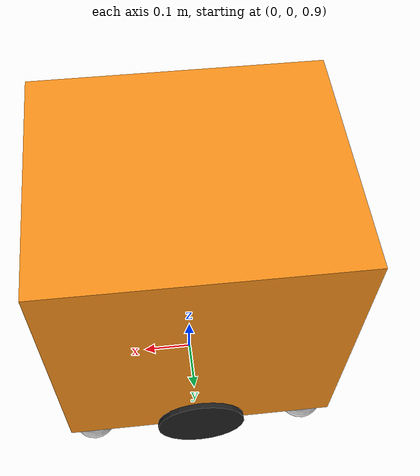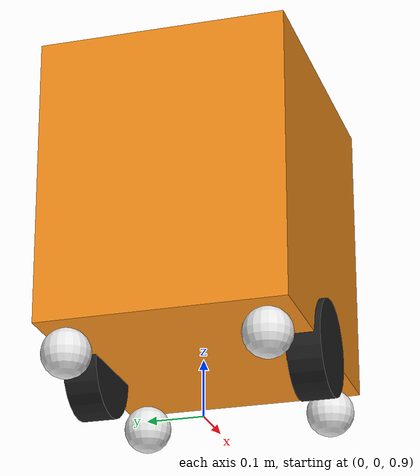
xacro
<?xml version="1.0"?>
<!-- Basic differential drive mobile base -->
<robot xmlns:xacro="http://www.ros.org/wiki/xacro" name="diffdrive_robot">
  <xacro:arg name="prefix" default="" />

  <xacro:include filename="diffbot_description.urdf_v2.xacro" />

  <!-- Import Rviz colors -->
  <xacro:include filename="$(find diffdrive_arduino)/urdf/diffbot.materials.xacro" />

  <!-- Import diffbot ros2_control description -->
  <xacro:include filename="$(find diffdrive_arduino)/ros2_control/diffbot.ros2_control.xacro" />

  <xacro:diffbot prefix="$(arg prefix)" />

  <xacro:diffbot_ros2_control
    name="DiffBot" prefix="$(arg prefix)" />

  <gazebo>
  <!-- *********************** WHEEL ODOMETRY ***************************    -->
   <plugin name="basic_mobile_bot_diff_drive" filename="libgazebo_ros_diff_drive.so">

    <update_rate>30</update_rate>

    <!-- wheels -->
    <left_joint>left_wheel_joint</left_joint>
    <right_joint>right_wheel_joint</right_joint>

    <!-- kinematics -->
    <wheel_separation>0.52</wheel_separation>
    <wheel_diameter>0.17</wheel_diameter>

    <!-- limits -->
    <max_wheel_torque>20</max_wheel_torque>
    <max_wheel_acceleration>1.0</max_wheel_acceleration>

    <!-- Receive velocity commands on this ROS topic -->
    <command_topic>cmd_vel</command_topic>

    <!-- output -->
    <!-- When false, publish no wheel odometry data to a ROS topic -->
    <publish_odom>true</publish_odom>

    <!-- When true, publish coordinate transform from odom to base_footprint -->
    <!-- I usually use the robot_localization package to publish this transform -->
    <publish_odom_tf>false</publish_odom_tf>

    <!-- When true, publish coordinate transform from base_link to the wheels -->
    <!-- The robot_state_publisher package is often used to publish this transform -->
    <publish_wheel_tf>false</publish_wheel_tf>

    <odometry_topic>odom</odometry_topic>
    <odometry_frame>odom</odometry_frame>
    <robot_base_frame>base_footprint</robot_base_frame>

    <!-- Odometry source, 0 for ENCODER, 1 for WORLD, defaults to WORLD -->
    <odometry_source>1</odometry_source>

    <!-- Change the ROS topic we will publish the odometry data to -->
    <ros>
      <remapping>odom:=wheel/odometry</remapping>
    </ros>

   </plugin>

     <!-- *********************** JOINT STATE PUBLISHER *********************   -->

   <plugin name="basic_mobile_bot_joint_state" filename="libgazebo_ros_joint_state_publisher.so">
    <ros>
      <remapping>~/out:=joint_states</remapping>
    </ros>
    <update_rate>30</update_rate>
    <joint_name>left_wheel_joint</joint_name>
    <joint_name>right_wheel_joint</joint_name>
   </plugin>

 </gazebo>
</robot>

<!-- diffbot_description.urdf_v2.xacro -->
<robot xmlns:xacro="http://www.ros.org/wiki/xacro">

  <xacro:macro name="diffbot" params="prefix">

  <!-- Constants for robot dimensions -->
  <xacro:property name="PI" value="3.1415926535897931"/>
  <xacro:property name="base_mass" value="45" />
  <xacro:property name="base_width" value="0.51" />
  <xacro:property name="base_length" value="0.43" />
  <xacro:property name="base_height" value="0.51" />
  <xacro:property name="wheel_mass" value="3.0" />
  <xacro:property name="wheel_len" value="0.060" />
  <xacro:property name="wheel_radius" value="0.085" />
  <xacro:property name="wheel_separation" value="0.275" />
  <xacro:property name="caster_wheel_mass" value="0.1" /> <!-- arbitrary value for caster wheel mass -->
  <xacro:property name="caster_wheel_radius" value="${wheel_radius/2}"/>
  <xacro:property name="z_offset" value="${wheel_radius}" /> <!-- Space btw top of beam and the each joint -->

  <link name="dummy">
  </link>

  <joint name="dummy_joint" type="fixed">
      <parent link="dummy"/>
      <child link="base_link"/>
      <origin xyz="0 0 1 " rpy="0 0 0"/>

  </joint>

  <!-- Base Link -->
  <link name="${prefix}base_link">
    <collision>
      <origin xyz="0 0 0" rpy="0 0 0"/>
      <geometry>
        <box size="${base_width} ${base_length} ${base_height}"/>
      </geometry>
    </collision>

    <visual>
      <origin xyz="0 0 ${base_height/2}" rpy="0 0 0"/>
      <geometry>
        <box size="${base_width} ${base_length} ${base_height}"/>
      </geometry>
      <material name="orange"/>
    </visual>

    <inertial>
      <origin xyz="0 0 0" rpy="0 0 0"/>
      <mass value="${base_mass}"/>
      <inertia
        ixx="${(base_mass / 12.0) * (base_length*base_length + base_height*base_height)}" ixy="0.0" ixz="0.0"
        iyy="${(base_mass / 12.0) * (base_height*base_height + base_width*base_width)}" iyz="0.0"
        izz="${(base_mass / 12.0) * (base_width*base_width + base_length*base_length)}"/>
      </inertial>
    </link>

    <joint name="${prefix}left_wheel_joint" type="continuous">
      <parent link="${prefix}base_link"/>
      <child link="${prefix}left_wheel"/>
      <origin xyz="0 -${base_width/2-wheel_len} 0" rpy="0 0 0"/>
      <axis xyz="0 1 0"/>
      <dynamics damping="0.2"/>
    </joint>

    <!-- left wheel Link -->
    <link name="${prefix}left_wheel">
      <collision>
        <origin xyz="0 0 0" rpy="${PI/2} 0 0"/>
        <geometry>
          <cylinder length="${wheel_len}" radius="${wheel_radius}"/>
        </geometry>
      </collision>

      <visual>
        <origin xyz="0 0 0" rpy="${PI/2} 0 0"/>
        <geometry>
          <cylinder length="${wheel_len}" radius="${wheel_radius}"/>
        </geometry>
        <material name="black"/>
      </visual>

      <inertial>
        <origin xyz="0 0 0" rpy="${PI/2} 0 0"/>
        <mass value="${wheel_mass}"/>
        <inertia
          ixx="0.055" ixy="0.0" ixz="0.0"
          iyy="0.055" iyz="0.0"
          izz="0.108"/>
        </inertial>
      </link>

    <joint name="${prefix}right_wheel_joint" type="continuous">
      <parent link="${prefix}base_link"/>
      <child link="${prefix}right_wheel"/>
      <origin xyz="0 ${base_width/2-wheel_len} 0" rpy="0 0 0"/>
      <axis xyz="0 1 0"/>
      <dynamics damping="0.2"/>
    </joint>

    <!-- right wheel Link -->
    <link name="${prefix}right_wheel">
      <collision>
        <origin xyz="0 0 0" rpy="${PI/2} 0 0"/>
        <geometry>
          <cylinder length="${wheel_len}" radius="${wheel_radius}"/>
        </geometry>
      </collision>

      <visual>
        <origin xyz="0 0 0" rpy="${PI/2} 0 0"/>
        <geometry>
          <cylinder length="${wheel_len}" radius="${wheel_radius}"/>
        </geometry>
        <material name="black"/>
      </visual>

      <inertial>
        <origin xyz="0 0 0" rpy="${PI/2} 0 0"/>
        <mass value="${wheel_mass}"/>
        <inertia
          ixx="0.055" ixy="0.0" ixz="0.0"
          iyy="0.055" iyz="0.0"
          izz="0.108"/>
        </inertial>
    </link>

    <joint name="${prefix}caster_left_frontal_wheel_joint" type="fixed">
      <parent link="${prefix}base_link"/>
      <child link="${prefix}caster_left_frontal_wheel"/>
      <origin xyz="${base_width/2 - caster_wheel_radius} ${base_width/2 - caster_wheel_radius*2} ${-caster_wheel_radius}" rpy="0 0 0"/>
    </joint>

    <!-- caster left frontal wheel Link -->
    <link name="${prefix}caster_left_frontal_wheel">
      <collision>
        <origin xyz="0 0 0" rpy="0 0 0"/>
        <geometry>
          <sphere radius="${caster_wheel_radius}"/>
        </geometry>
      </collision>

      <visual>
        <origin xyz="0 0 0" rpy="0 0 0"/>
        <geometry>
          <sphere radius="${caster_wheel_radius}"/>
        </geometry>
        <material name="white"/>
      </visual>

      <inertial>
        <origin xyz="0 0 0" rpy="0 0 0"/>
        <mass value="${caster_wheel_mass}"/>
        <inertia
          ixx="0.001" ixy="0.0" ixz="0.0"
          iyy="0.001" iyz="0.0"
          izz="0.001"/>
        </inertial>
      </link>

    <joint name="${prefix}caster_right_frontal_wheel_joint" type="fixed">
      <parent link="${prefix}base_link"/>
      <child link="${prefix}caster_right_frontal_wheel"/>
      <origin xyz="${base_width/2 - caster_wheel_radius} ${-base_width/2 + caster_wheel_radius*2} ${- caster_wheel_radius}" rpy="0 0 0"/>
     </joint>

    <!-- caster right frontal wheel Link -->
    <link name="${prefix}caster_right_frontal_wheel">
      <collision>
        <origin xyz="0 0 0" rpy="0 0 0"/>
        <geometry>
          <sphere radius="${caster_wheel_radius}"/>
        </geometry>
      </collision>

      <visual>
        <origin xyz="0 0 0" rpy="0 0 0"/>
        <geometry>
          <sphere radius="${caster_wheel_radius}"/>
        </geometry>
        <material name="white"/>
      </visual>

      <inertial>
        <origin xyz="0 0 0" rpy="0 0 0"/>
        <mass value="${caster_wheel_mass}"/>
        <inertia
          ixx="0.001" ixy="0.0" ixz="0.0"
          iyy="0.001" iyz="0.0"
          izz="0.001"/>
        </inertial>
      </link>

    <joint name="${prefix}caster_left_rear_wheel_joint" type="fixed">
      <parent link="${prefix}base_link"/>
      <child link="${prefix}caster_left_rear_wheel"/>
      <origin xyz="${-base_width/2 + caster_wheel_radius} ${base_width/2 - caster_wheel_radius*2} ${- caster_wheel_radius}" rpy="0 0 0"/>
     </joint>

    <!-- caster left rear wheel Link -->
    <link name="${prefix}caster_left_rear_wheel">
      <collision>
        <origin xyz="0 0 0" rpy="0 0 0"/>
        <geometry>
          <sphere radius="${caster_wheel_radius}"/>
        </geometry>
      </collision>

      <visual>
        <origin xyz="0 0 0" rpy="0 0 0"/>
        <geometry>
          <sphere radius="${caster_wheel_radius}"/>
        </geometry>
        <material name="white"/>
      </visual>

      <inertial>
        <origin xyz="0 0 0" rpy="0 0 0"/>
        <mass value="${caster_wheel_mass}"/>
        <inertia
          ixx="0.001" ixy="0.0" ixz="0.0"
          iyy="0.001" iyz="0.0"
          izz="0.001"/>

      </inertial>
    </link>

    <joint name="${prefix}caster_right_rear_wheel_joint" type="fixed">
      <parent link="${prefix}base_link"/>
      <child link="${prefix}caster_right_rear_wheel"/>
      <origin xyz="${-base_width/2 + caster_wheel_radius} ${-base_width/2 + caster_wheel_radius*2} ${- caster_wheel_radius}" rpy="0 0 0"/>
     </joint>

    <!-- caster right rear wheel Link -->
    <link name="${prefix}caster_right_rear_wheel">
      <collision>
        <origin xyz="0 0 0" rpy="0 0 0"/>
        <geometry>
          <sphere radius="${caster_wheel_radius}"/>
        </geometry>
      </collision>

      <visual>
        <origin xyz="0 0 0" rpy="0 0 0"/>
        <geometry>
          <sphere radius="${caster_wheel_radius}"/>
        </geometry>
        <material name="white"/>
      </visual>

      <inertial>
        <origin xyz="0 0 0" rpy="0 0 0"/>
        <mass value="${caster_wheel_mass}"/>
        <inertia
          ixx="0.001" ixy="0.0" ixz="0.0"
          iyy="0.001" iyz="0.0"
          izz="0.001"/>

      </inertial>
    </link>

  </xacro:macro>

</robot>
